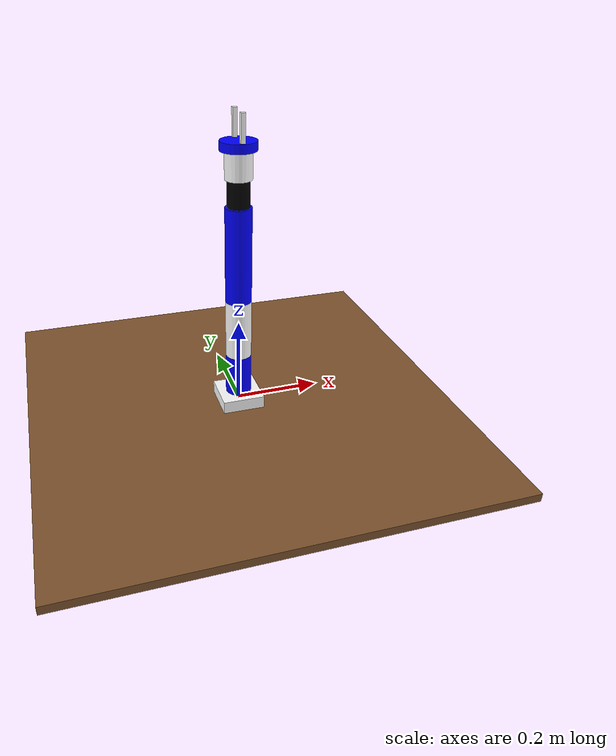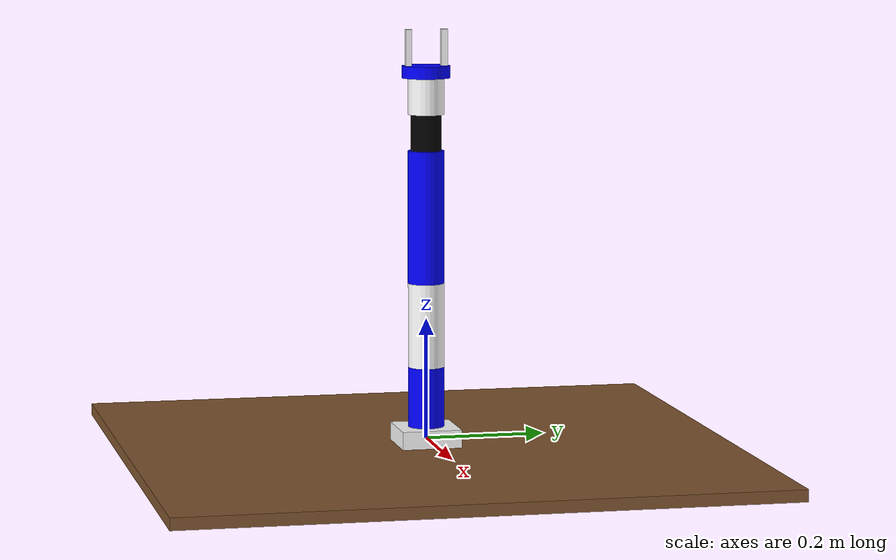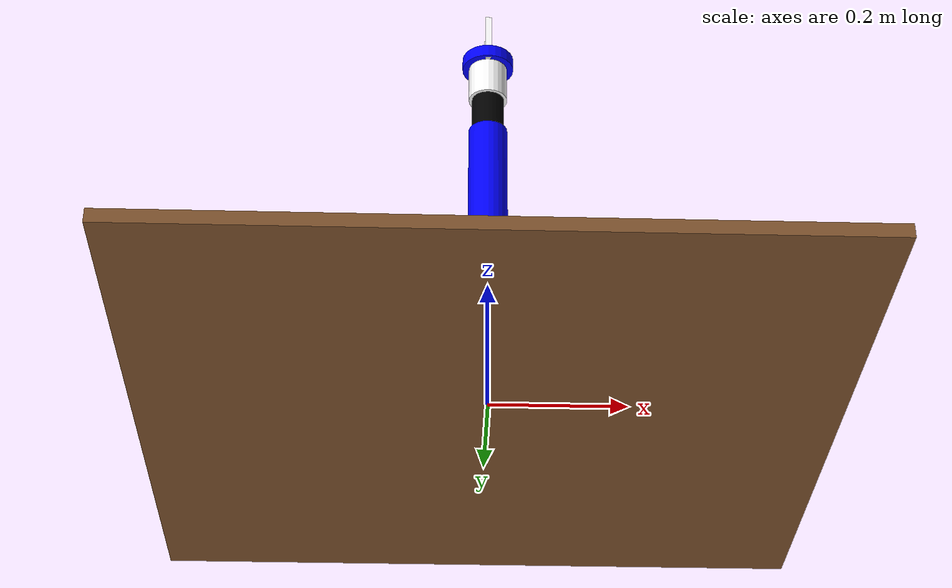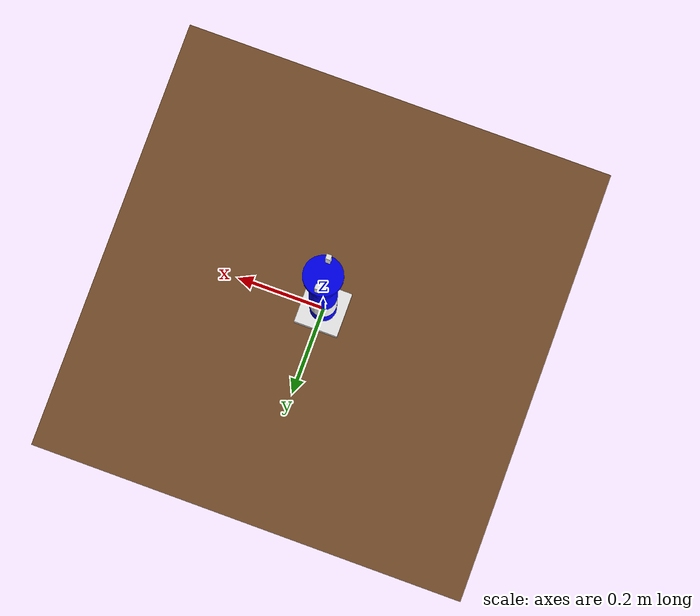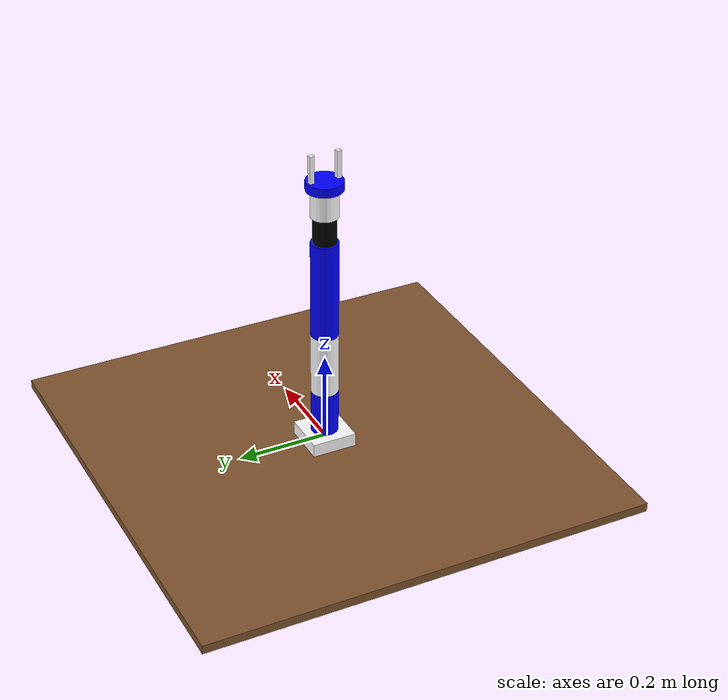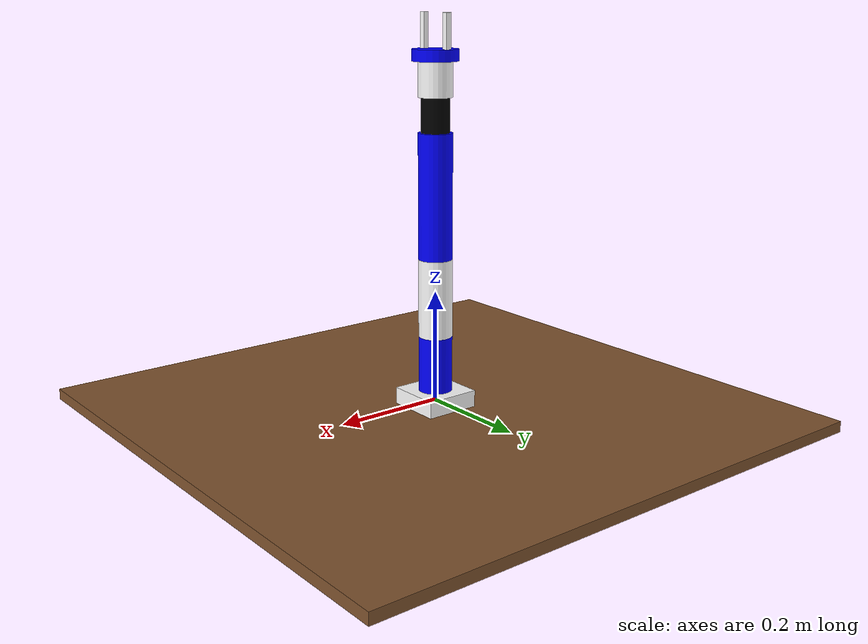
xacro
<?xml version="1.0" encoding="utf-8" ?>
<!-- |    This document was autogenerated by xacro from /home/jove/catkin_ws/src/hharm_description/urdf/hharm.xacro | -->
<!-- |    EDITING THIS FILE BY HAND IS NOT RECOMMENDED                                 | -->
<robot name="hharm" xmlns:xacro="http://ros.org/wiki/xacro">
    <!-- Defining the colors used in this robot -->
    <material name="Black">
        <color rgba="0 0 0 1" />
    </material>
    <material name="White">
        <color rgba="1 1 1 1" />
    </material>
    <material name="Blue">
        <color rgba="0 0 1 1" />
    </material>
    <material name="Red">
        <color rgba="1 0 0 1" />
    </material>
    <!-- bottom_joint -->
    <joint name="bottom_joint" type="fixed">
        <origin rpy="0 0 0" xyz="0 0 0" />
        <parent link="base_link" />
        <child link="bottom_link" />
    </joint>
    <link name="bottom_link">
        <visual>
            <origin rpy="0 0 0" xyz=" 0 0 -0.02" />
            <geometry>
                <box size="1 1 0.02" />
            </geometry>
            <material name="Brown" />
        </visual>
        <collision>
            <origin rpy="0 0 0" xyz=" 0 0 -0.02" />
            <geometry>
                <box size="1 1 0.02" />
            </geometry>
        </collision>

<inertial>
            <mass value="500" />
            <inertia ixx="1.0" ixy="0.0" ixz="0.0" iyy="0.5" iyz="0.0" izz="1.0" />
        </inertial>

    </link>
    <!--  BASE LINK  -->
    <link name="base_link">
        <visual>
            <origin rpy="0 0 0" xyz="0 0 0" />
            <geometry>
                <box size="0.1 0.1 0.04" />
            </geometry>
            <material name="White" />
        </visual>
        <collision>
            <origin rpy="0 0 0" xyz="0 0 0" />
            <geometry>
                <box size="0.1 0.1 0.04" />
            </geometry>
        </collision>

<inertial>
            <mass value="1" />
            <inertia ixx="1.0" ixy="0.0" ixz="0.0" iyy="0.5" iyz="0.0" izz="1.0" />
        </inertial>

    </link>
    <joint name="joint1" type="revolute">
        <parent link="base_link" />
        <child link="link1" />
        <origin rpy="0 1.570795 0" xyz="0 0 0.02" />
        <axis xyz="-1 0 0" />
        <limit effort="300" lower="-2.96" upper="2.96" velocity="1" />
        <dynamics damping="50" friction="1" />
    </joint>
    <!-- LINK1 -->
    <link name="link1">
        <visual>
            <origin rpy="0 1.570795 0" xyz="-0.05 0 0" />
            <geometry>
                <cylinder length="0.1" radius="0.03" />
            </geometry>
            <material name="Blue" />
        </visual>
        <collision>
            <origin rpy="0 1.570795 0" xyz="-0.05 0 0" />
            <geometry>
                <cylinder length="0.1" radius="0.03" />
            </geometry>
        </collision>

<inertial>
            <mass value="1" />
            <inertia ixx="1.0" ixy="0.0" ixz="0.0" iyy="0.5" iyz="0.0" izz="1.0" />
        </inertial>

    </link>
    <joint name="joint2" type="revolute">
        <parent link="link1" />
        <child link="link2" />
        <origin rpy="-1.570795 0 1.570795" xyz="-0.1 0 0.0" />
        <axis xyz="1 0 0" />
        <limit effort="300" lower="-2.35" upper="2.35" velocity="1" />
        <dynamics damping="50" friction="1" />
    </joint>
    <!-- LINK2 -->
    <link name="link2">
        <visual>
            <origin rpy="0 0 0" xyz="0 0 0.07" />
            <geometry>
                <cylinder length="0.14" radius="0.03" />
            </geometry>
            <material name="White" />
        </visual>
        <collision>
            <origin rpy="0 0 0" xyz="0 0 0.07" />
            <geometry>
                <cylinder length="0.14" radius="0.03" />
            </geometry>
        </collision>

<inertial>
            <mass value="1" />
            <inertia ixx="1.0" ixy="0.0" ixz="0.0" iyy="0.5" iyz="0.0" izz="1.0" />
        </inertial>

    </link>
    <joint name="joint3" type="revolute">
        <parent link="link2" />
        <child link="link3" />
        <origin rpy="0 3.14159 0" xyz="0 0 0.14" />
        <axis xyz="-1 0 0" />
        <limit effort="300" lower="-2.62" upper="2.62" velocity="1" />
        <dynamics damping="50" friction="1" />
    </joint>
    <!-- LINK3 -->
    <link name="link3">
        <visual>
            <origin rpy="0 0 0" xyz="0 0 -0.11" />
            <geometry>
                <cylinder length="0.22" radius="0.03" />
            </geometry>
            <material name="Blue" />
        </visual>
        <collision>
            <origin rpy="0 0 0" xyz="0 0 -0.11" />
            <geometry>
                <cylinder length="0.22" radius="0.03" />
            </geometry>
        </collision>

<inertial>
            <mass value="1" />
            <inertia ixx="1.0" ixy="0.0" ixz="0.0" iyy="0.5" iyz="0.0" izz="1.0" />
        </inertial>

    </link>
    <joint name="joint4" type="revolute">
        <parent link="link3" />
        <child link="link4" />
        <origin rpy="0 1.570795 3.14159" xyz="0.0 0.0 -0.22" />
        <axis xyz="1 0 0" />
        <limit effort="300" lower="-2.62" upper="2.62" velocity="1" />
        <dynamics damping="50" friction="1" />
    </joint>
    <!-- LINK4 -->
    <link name="link4">
        <visual>
            <origin rpy="0 1.570795 0" xyz="0.03 0 0" />
            <geometry>
                <cylinder length="0.06" radius="0.025" />
            </geometry>
            <material name="Black" />
        </visual>
        <collision>
            <origin rpy="0 1.570795 0" xyz="0.03 0 0" />
            <geometry>
                <cylinder length="0.06" radius="0.025" />
            </geometry>
        </collision>

<inertial>
            <mass value="1" />
            <inertia ixx="1.0" ixy="0.0" ixz="0.0" iyy="0.5" iyz="0.0" izz="1.0" />
        </inertial>

    </link>
    <joint name="joint5" type="revolute">
        <parent link="link4" />
        <child link="link5" />
        <origin rpy="0 1.570795 0" xyz="0.06 0.0 0.0" />
        <axis xyz="1 0 0" />
        <limit effort="300" lower="-2.62" upper="2.62" velocity="1" />
        <dynamics damping="50" friction="1" />
    </joint>
    <!-- LINK5 -->
    <link name="link5">
        <visual>
            <origin rpy="0 0 0" xyz="0 0 0.03" />
            <geometry>
                <cylinder length="0.06" radius="0.03" />
            </geometry>
            <material name="White" />
        </visual>
        <collision>
            <origin rpy="0 0 0" xyz="0 0 0.03 " />
            <geometry>
                <cylinder length="0.06" radius="0.03" />
            </geometry>
        </collision>

<inertial>
            <mass value="1" />
            <inertia ixx="1.0" ixy="0.0" ixz="0.0" iyy="0.5" iyz="0.0" izz="1.0" />
        </inertial>

    </link>
    <joint name="joint6" type="revolute">
        <parent link="link5" />
        <child link="link6" />
        <origin rpy="4.712385 -1.570795 0" xyz="0 0 0.06" />
        <axis xyz="1 0 0" />
        <limit effort="300" lower="-6.28" upper="6.28" velocity="1" />
        <dynamics damping="50" friction="1" />
    </joint>
    <!-- LINK6 -->
    <link name="link6">
        <visual>
            <origin rpy="0 1.570795 0" xyz="0.01 0 0 " />
            <geometry>
                <cylinder length="0.02" radius="0.04" />
            </geometry>
            <material name="Blue" />
        </visual>
        <collision>
            <origin rpy="0 1.570795 0" xyz="0.01 0 0" />
            <geometry>
                <cylinder length="0.02" radius="0.04" />
            </geometry>
        </collision>

<inertial>
            <mass value="1" />
            <inertia ixx="1.0" ixy="0.0" ixz="0.0" iyy="0.5" iyz="0.0" izz="1.0" />
        </inertial>

    </link>
    <!-- gripper -->
    <joint name="finger_joint1" type="prismatic">
        <parent link="link6" />
        <child link="gripper_finger_link1" />
        <origin xyz="0.0 0 0" />
        <axis xyz="0 1 0" />
        <limit effort="100" lower="0" upper="0.06" velocity="1.0" />
        <dynamics damping="50" friction="1" />
    </joint>
    <!-- LEFT GRIPPER AFT LINK -->
    <link name="gripper_finger_link1">
        <visual>
            <origin xyz="0.04 -0.03 0" />
            <geometry>
                <box size="0.08 0.01 0.01" />
            </geometry>
            <material name="White" />
        </visual>

<inertial>
            <mass value="1" />
            <inertia ixx="1.0" ixy="0.0" ixz="0.0" iyy="0.5" iyz="0.0" izz="1.0" />
        </inertial>

    </link>
    <joint name="finger_joint2" type="fixed">
        <parent link="link6" />
        <child link="gripper_finger_link2" />
        <origin xyz="0.0 0 0" />
    </joint>
    <!-- RIGHT GRIPPER AFT LINK -->
    <link name="gripper_finger_link2">
        <visual>
            <origin xyz="0.04 0.03 0" />
            <geometry>
                <box size="0.08 0.01 0.01" />
            </geometry>
            <material name="White" />
        </visual>

<inertial>
            <mass value="1" />
            <inertia ixx="1.0" ixy="0.0" ixz="0.0" iyy="0.5" iyz="0.0" izz="1.0" />
        </inertial>

    </link>
    <!-- Grasping frame -->
    <link name="grasping_frame" />
    <joint name="grasping_frame_joint" type="fixed">
        <parent link="link6" />
        <child link="grasping_frame" />
        <origin rpy="0 0 0" xyz="0.08 0 0" />
    </joint>
    <!-- Gazebo -->
    <gazebo reference="bottom_link">
        <material>Gazebo/White</material>
    </gazebo>
    <gazebo reference="base_link">
        <material>Gazebo/White</material>
    </gazebo>
    <gazebo reference="link1">
        <material>Gazebo/Blue</material>
    </gazebo>
    <gazebo reference="link2">
        <material>Gazebo/White</material>
    </gazebo>
    <gazebo reference="link3">
        <material>Gazebo/Blue</material>
    </gazebo>
    <gazebo reference="link4">
        <material>Gazebo/Black</material>
    </gazebo>
    <gazebo reference="link5">
        <material>Gazebo/White</material>
    </gazebo>
    <gazebo reference="link6">
        <material>Gazebo/Blue</material>
    </gazebo>
    <gazebo reference="gripper_finger_link1">
        <material>Gazebo/White</material>
    </gazebo>
    <gazebo reference="gripper_finger_link2">
        <material>Gazebo/White</material>
    </gazebo>

<transmission name="tran1">
        <type>transmission_interface/SimpleTransmission</type>
        <joint name="joint1">
            <hardwareInterface>hardware_interface/PositionJointInterface</hardwareInterface>
        </joint>
        <actuator name="motor1">
            <hardwareInterface>hardware_interface/PositionJointInterface</hardwareInterface>
            <mechanicalReduction>1</mechanicalReduction>
        </actuator>
    </transmission>
    <transmission name="tran1">
        <type>transmission_interface/SimpleTransmission</type>
        <joint name="joint2">
            <hardwareInterface>hardware_interface/PositionJointInterface</hardwareInterface>
        </joint>
        <actuator name="motor1">
            <hardwareInterface>hardware_interface/PositionJointInterface</hardwareInterface>
            <mechanicalReduction>1</mechanicalReduction>
        </actuator>
    </transmission>
    <transmission name="tran1">
        <type>transmission_interface/SimpleTransmission</type>
        <joint name="joint3">
            <hardwareInterface>hardware_interface/PositionJointInterface</hardwareInterface>
        </joint>
        <actuator name="motor1">
            <hardwareInterface>hardware_interface/PositionJointInterface</hardwareInterface>
            <mechanicalReduction>1</mechanicalReduction>
        </actuator>
    </transmission>
    <transmission name="tran1">
        <type>transmission_interface/SimpleTransmission</type>
        <joint name="joint4">
            <hardwareInterface>hardware_interface/PositionJointInterface</hardwareInterface>
        </joint>
        <actuator name="motor1">
            <hardwareInterface>hardware_interface/PositionJointInterface</hardwareInterface>
            <mechanicalReduction>1</mechanicalReduction>
        </actuator>
    </transmission>
    <transmission name="tran1">
        <type>transmission_interface/SimpleTransmission</type>
        <joint name="joint5">
            <hardwareInterface>hardware_interface/PositionJointInterface</hardwareInterface>
        </joint>
        <actuator name="motor1">
            <hardwareInterface>hardware_interface/PositionJointInterface</hardwareInterface>
            <mechanicalReduction>1</mechanicalReduction>
        </actuator>
    </transmission>
    <transmission name="tran1">
        <type>transmission_interface/SimpleTransmission</type>
        <joint name="joint6">
            <hardwareInterface>hardware_interface/PositionJointInterface</hardwareInterface>
        </joint>
        <actuator name="motor1">
            <hardwareInterface>hardware_interface/PositionJointInterface</hardwareInterface>
            <mechanicalReduction>1</mechanicalReduction>
        </actuator>
    </transmission>
    <transmission name="tran1">
        <type>transmission_interface/SimpleTransmission</type>
        <joint name="finger_joint1">
            <hardwareInterface>hardware_interface/PositionJointInterface</hardwareInterface>
        </joint>
        <actuator name="motor1">
            <hardwareInterface>hardware_interface/PositionJointInterface</hardwareInterface>
            <mechanicalReduction>1</mechanicalReduction>
        </actuator>
    </transmission>
    <!-- ros_control plugin -->
    <gazebo>
        <plugin filename="libgazebo_ros_control.so" name="gazebo_ros_control">
            <robotNamespace>/hharm</robotNamespace>
        </plugin>
    </gazebo>
    <transmission name="trans_joint1">
        <type>transmission_interface/SimpleTransmission</type>
        <joint name="joint1">
            <hardwareInterface>hardware_interface/EffortJointInterface</hardwareInterface>
        </joint>
        <actuator name="joint1_motor">
            <hardwareInterface>hardware_interface/EffortJointInterface</hardwareInterface>
            <mechanicalReduction>1</mechanicalReduction>
        </actuator>
    </transmission>
    <transmission name="trans_joint2">
        <type>transmission_interface/SimpleTransmission</type>
        <joint name="joint2">
            <hardwareInterface>hardware_interface/EffortJointInterface</hardwareInterface>
        </joint>
        <actuator name="joint2_motor">
            <hardwareInterface>hardware_interface/EffortJointInterface</hardwareInterface>
            <mechanicalReduction>1</mechanicalReduction>
        </actuator>
    </transmission>
    <transmission name="trans_joint3">
        <type>transmission_interface/SimpleTransmission</type>
        <joint name="joint3">
            <hardwareInterface>hardware_interface/EffortJointInterface</hardwareInterface>
        </joint>
        <actuator name="joint3_motor">
            <hardwareInterface>hardware_interface/EffortJointInterface</hardwareInterface>
            <mechanicalReduction>1</mechanicalReduction>
        </actuator>
    </transmission>
    <transmission name="trans_joint4">
        <type>transmission_interface/SimpleTransmission</type>
        <joint name="joint4">
            <hardwareInterface>hardware_interface/EffortJointInterface</hardwareInterface>
        </joint>
        <actuator name="joint4_motor">
            <hardwareInterface>hardware_interface/EffortJointInterface</hardwareInterface>
            <mechanicalReduction>1</mechanicalReduction>
        </actuator>
    </transmission>
    <transmission name="trans_joint5">
        <type>transmission_interface/SimpleTransmission</type>
        <joint name="joint5">
            <hardwareInterface>hardware_interface/EffortJointInterface</hardwareInterface>
        </joint>
        <actuator name="joint5_motor">
            <hardwareInterface>hardware_interface/EffortJointInterface</hardwareInterface>
            <mechanicalReduction>1</mechanicalReduction>
        </actuator>
    </transmission>
    <transmission name="trans_joint6">
        <type>transmission_interface/SimpleTransmission</type>
        <joint name="joint6">
            <hardwareInterface>hardware_interface/EffortJointInterface</hardwareInterface>
        </joint>
        <actuator name="joint6_motor">
            <hardwareInterface>hardware_interface/EffortJointInterface</hardwareInterface>
            <mechanicalReduction>1</mechanicalReduction>
        </actuator>
    </transmission>
    <transmission name="trans_finger_joint1">
        <type>transmission_interface/SimpleTransmission</type>
        <joint name="finger_joint1">
            <hardwareInterface>hardware_interface/EffortJointInterface</hardwareInterface>
        </joint>
        <actuator name="finger_joint1_motor">
            <hardwareInterface>hardware_interface/EffortJointInterface</hardwareInterface>
            <mechanicalReduction>1</mechanicalReduction>
        </actuator>
    </transmission>
    <gazebo>
        <plugin name="gazebo_ros_control" filename="libgazebo_ros_control.so">
            <robotNamespace>/</robotNamespace>
        </plugin>
    </gazebo>
</robot>
